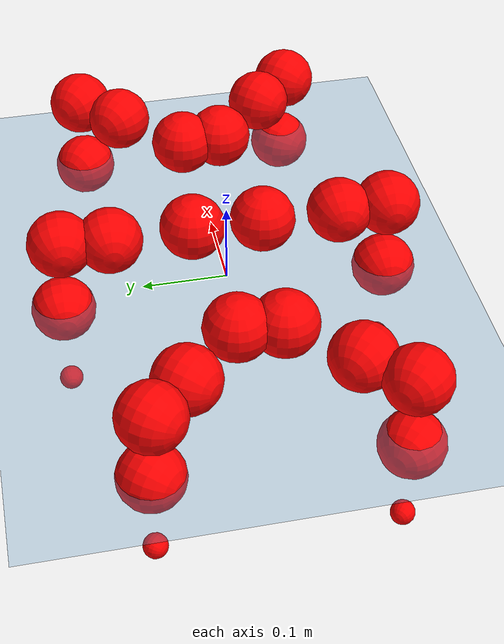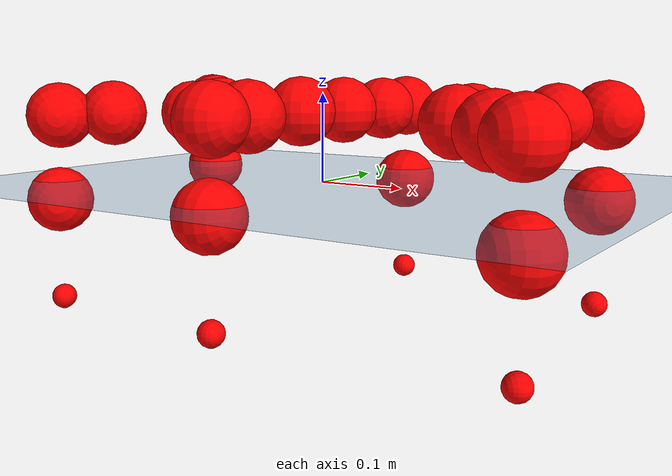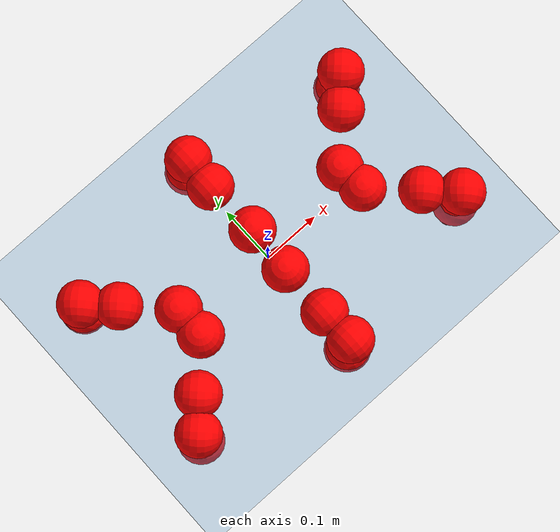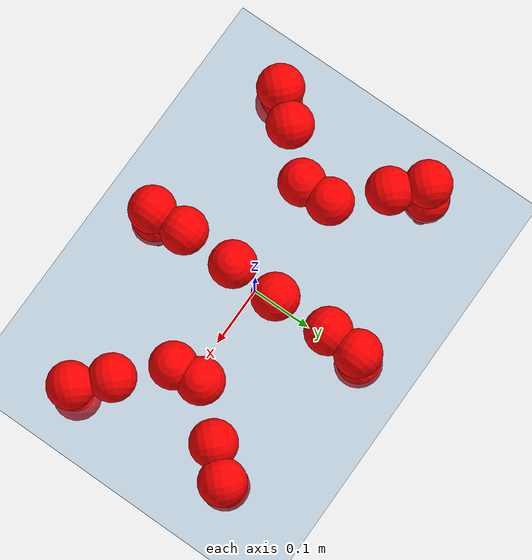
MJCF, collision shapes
<mujoco model="Golem">
  <compiler angle="radian" assetdir="assets" balanceinertia="true" inertiafromgeom="false"/>

  <option timestep="0.005" density="1.2" viscosity="2e-05"/>

  <size nkey="1"/>

  <visual>
    <quality shadowsize="8192"/>
    <map shadowclip="0.5"/>
  </visual>

  <default>
    <default class="/">
      <joint armature="0.01" damping="0.01" frictionloss="0.01"/>
      <geom contype="0" conaffinity="0" group="1" solref="-1000 -80"/>
      <site size="0.01 0.005 0.005" group="5"/>
      <general forcelimited="true" biastype="affine" gainprm="25" biasprm="0 -25 -0.5"/>
      <default class="visual">
        <geom type="mesh" group="2"/>
      </default>
      <default class="collision">
        <geom group="3"/>
      </default>
      <default class="foot">
        <geom size="0.01 0 0" condim="6" group="4" priority="1" solimp="0.015 1 0.01"/>
      </default>
      <default class="reward_collision_sphere">
        <geom group="5" rgba="1 0 0 1"/>
      </default>
    </default>
  </default>

  <asset>
    <texture type="skybox" colorspace="auto" name="//unnamed_texture_0" builtin="gradient" rgb1="0.95 0.95 0.95" rgb2="0.95 0.95 0.95" width="100" height="600"/>
    <texture type="2d" colorspace="auto" name="texplane" builtin="checker" rgb1="0.345 0.575 0.748" rgb2="0.345 0.575 0.748" markrgb="1 1 1" width="512" height="512"/>
    <material name="MatPlane" class="/" texture="texplane" texuniform="true" texrepeat="2 2" specular="0.9"/>
    <mesh name="body" class="/" file="body.stl" scale="0.001 0.001 0.001"/>
    <mesh name="coxa" class="/" file="coxa.stl" scale="0.001 0.001 0.001"/>
    <mesh name="femur" class="/" file="femur.stl" scale="0.001 0.001 0.001"/>
    <mesh name="tibia" class="/" file="tibia.stl" scale="0.001 0.001 0.001"/>
    <mesh name="tarsus" class="/" file="tarsus.stl" scale="0.001 0.001 0.001"/>
  </asset>

  <worldbody>
    <geom name="floor" class="/" size="100 100 0.125" type="plane" group="0" material="MatPlane"/>
    <light name="toplight_shadow" class="/" pos="0 0 5" dir="0.0990148 0.0990148 -0.990148" type="directional" ambient="0.04 0.04 0.04" diffuse="0.55 0.55 0.55" specular="0.12 0.12 0.12"/>
    <light name="toplight_fill" class="/" pos="0 0 5" dir="0.0990148 0.0990148 -0.990148" type="directional" castshadow="false" ambient="0.04 0.04 0.04" diffuse="0.3 0.3 0.3" specular="0.08 0.08 0.08"/>
    <body name="trunk" pos="0.00203988 -0.00274792 0.000562817" quat="1 9.30446e-06 2.91435e-05 -2.02134e-05">
      <inertial pos="-0.00126503 -0.00155573 0.00353265" quat="0.999971 0.00440707 -0.00247937 0.00565167" mass="3.02306" diaginertia="0.0144311 0.000518935 0.0260462"/>
      <joint name="//unnamed_joint_0" type="free"/>
      <geom name="//unnamed_geom_1" class="/" pos="0 0 0.077086" quat="1 0 0 0" type="mesh" rgba="0.9 0.9 0.9 1" mesh="body"/>
      <site name="imu" class="/" pos="0.130695 -0.000515913 0.110817" size="0.00947423"/>
      <camera name="track" class="/" pos="0 -1.11087 0" quat="0.707107 0.707107 0 0" mode="trackcom"/>
      <camera name="ego_camera" class="/" pos="0.140707 0 0.120447" quat="-0.5 -0.5 0.5 0.5"/>
      <body name="coxa_RR" pos="-0.191918 -0.0503606 0.074459" quat="0.383417 -1.37859e-05 -0.00079993 -0.923575">
        <inertial pos="0.000380494 0.00399422 -0.00341318" quat="0.999984 -0.00350671 0.00272618 -0.00358429" mass="0.167541" diaginertia="0.0149921 0.000516314 0.0252662"/>
        <joint name="coxa_joint_RR" class="/" pos="0 0 0" axis="-0.00451341 -0.00297708 -0.999985" range="-3.15733 3.13566" armature="0.00930159" damping="0.0229907" frictionloss="0.00837888"/>
        <geom name="//unnamed_geom_2" class="/" type="mesh" rgba="0.2 0.2 0.2 1" mesh="coxa"/>
        <geom name="//unnamed_geom_3" class="reward_collision_sphere" size="0.0378969" pos="-0.0324709 0 0"/>
        <body name="femur_RR" pos="0.0601863 0.00221845 0.000606031" quat="0.499458 -0.500894 0.500337 0.499309">
          <inertial pos="0.000926092 0.0010026 -0.00228575" quat="1 -0.000822224 0.000342721 -0.000371875" mass="0.167625" diaginertia="0.0146152 0.000516049 0.024824"/>
          <joint name="femur_joint_RR" class="/" pos="0 0 0" axis="-0.00301958 -0.00447815 -0.999985" range="-3.13954 3.15383" armature="0.00969162" damping="0.0148844" frictionloss="0.00933185"/>
          <geom name="//unnamed_geom_4" class="/" type="mesh" rgba="0.9 0.9 0.9 1" mesh="femur"/>
          <geom name="//unnamed_geom_5" class="reward_collision_sphere" size="0.0378969"/>
          <body name="tibia_RR" pos="0.00203745 -0.0612859 0.0040341" quat="7.52758e-06 1 -0.000164913 9.16573e-05">
            <inertial pos="0.00107145 0.00019156 0.00234636" quat="0.99999 0.00451708 -0.00045728 0.000565651" mass="0.174653" diaginertia="0.0150699 0.000528073 0.0242907"/>
            <joint name="tibia_joint_RR" class="/" pos="0 0 0" axis="-0.00134414 -0.00157243 0.999998" range="-3.1681 3.23988" armature="0.00816484" damping="0.00846138" frictionloss="0.010599"/>
            <geom name="//unnamed_geom_6" class="/" type="mesh" rgba="0.2 0.2 0.2 1" mesh="tibia"/>
            <geom name="//unnamed_geom_7" class="reward_collision_sphere" size="0.0378969"/>
            <body name="tarsus_RR" pos="0.098115 0.00255822 -0.000896943" quat="1 0.000509231 -0.000210016 0.000663392">
              <inertial pos="0.0645499 -0.00485248 0.00173249" quat="0.500449 0.505396 0.495937 0.498169" mass="0.158686" diaginertia="0.0141861 0.000498049 0.0243097"/>
              <joint name="tarsus_joint_RR" class="/" pos="0 0 0" axis="-0.00287286 5.75648e-05 0.999996" range="-3.21411 3.123" armature="0.0104954" damping="0.0460729" frictionloss="0.0100206"/>
              <geom name="//unnamed_geom_8" class="/" type="mesh" rgba="0.9 0.9 0.9 1" mesh="tarsus"/>
              <geom name="foot_1" class="foot" size="0.00996697" pos="0.121225 0 0" quat="0 -0.707107 0 0.707107"/>
              <geom name="//unnamed_geom_10" class="reward_collision_sphere" size="0.0378969"/>
              <geom name="//unnamed_geom_11" class="reward_collision_sphere" size="0.0142113" pos="0.116354 0 0"/>
              <site name="foot_1" class="foot" pos="0.121225 0 0" quat="0 -0.707107 0 0.707107" size="0.00947423"/>
            </body>
          </body>
        </body>
      </body>
      <body name="coxa_RM" pos="-0.00294565 -0.0716455 0.0810087" quat="0.7073 0.000404968 -0.000411414 -0.706913">
        <inertial pos="-0.00142508 0.00157049 0.00279159" quat="0.999998 0.00115347 0.000105322 0.00146609" mass="0.175423" diaginertia="0.0153343 0.000541467 0.0262084"/>
        <joint name="coxa_joint_RM" class="/" pos="0 0 0" axis="0.00624333 -0.00278452 -0.999977" stiffness="0.0178944" range="-3.1885 3.08737" armature="0.00976545" damping="0.0359073" frictionloss="0.0116644"/>
        <geom name="//unnamed_geom_12" class="/" type="mesh" rgba="0.2 0.2 0.2 1" mesh="coxa"/>
        <geom name="//unnamed_geom_13" class="reward_collision_sphere" size="0.0378969" pos="-0.0324709 0 0"/>
        <body name="femur_RM" pos="0.0582377 -7.49832e-05 -0.00147775" quat="0.500723 -0.500454 0.499536 0.499287">
          <inertial pos="0.000988231 -0.00115295 -0.00099853" quat="0.999917 -0.00799182 -0.00211675 -0.00991617" mass="0.162973" diaginertia="0.0150208 0.000501237 0.0250225"/>
          <joint name="femur_joint_RM" class="/" pos="0 0 0" axis="0.00619952 -0.0123708 -0.999904" range="-3.08844 3.11608" armature="0.00847374" damping="0.0128997" frictionloss="0.00920918"/>
          <geom name="//unnamed_geom_14" class="/" type="mesh" rgba="0.9 0.9 0.9 1" mesh="femur"/>
          <geom name="//unnamed_geom_15" class="reward_collision_sphere" size="0.0378969"/>
          <body name="tibia_RM" pos="-0.000158929 -0.0585341 0.00138009" quat="-0.000172517 1 -0.000104595 -1.80812e-05">
            <inertial pos="0.00396707 0.00274971 0.0024289" quat="0.999789 0.0157795 0.00169755 -0.0130566" mass="0.170629" diaginertia="0.0149009 0.000533491 0.0267993"/>
            <joint name="tibia_joint_RM" class="/" pos="0 0 0" axis="-0.00351728 0.000815831 0.999993" range="-3.12149 3.16765" armature="0.0100746" damping="0" frictionloss="0.00979889"/>
            <geom name="//unnamed_geom_16" class="/" type="mesh" rgba="0.2 0.2 0.2 1" mesh="tibia"/>
            <geom name="//unnamed_geom_17" class="reward_collision_sphere" size="0.0378969"/>
            <body name="tarsus_RM" pos="0.0936568 0.000728107 0.00295806" quat="0.999999 -0.000337848 -0.00112971 0.000393528">
              <inertial pos="0.0640417 0.00303005 -0.00201433" quat="0.497658 0.500548 0.506952 0.494761" mass="0.170635" diaginertia="0.0152212 0.000512506 0.0255052"/>
              <joint name="tarsus_joint_RM" class="/" pos="0 0 0" axis="-0.00749453 0.00799333 0.99994" range="-3.13452 3.13194" armature="0.0109407" damping="0" frictionloss="0.0104209"/>
              <geom name="//unnamed_geom_18" class="/" type="mesh" rgba="0.9 0.9 0.9 1" mesh="tarsus"/>
              <geom name="foot_2" class="foot" size="0.0099162" pos="0.121225 0 0" quat="0 -0.707107 0 0.707107"/>
              <geom name="//unnamed_geom_20" class="reward_collision_sphere" size="0.0378969"/>
              <geom name="//unnamed_geom_21" class="reward_collision_sphere" size="0.0142113" pos="0.116354 0 0"/>
              <site name="foot_2" class="foot" pos="0.121225 0 0" quat="0 -0.707107 0 0.707107" size="0.00947423"/>
            </body>
          </body>
        </body>
      </body>
      <body name="coxa_RF" pos="0.197084 -0.0459621 0.0744922" quat="0.923841 -0.000166431 0.000176773 -0.382776">
        <inertial pos="-0.00193128 -0.000283208 0.000768987" quat="0.99994 0.00443111 -0.00693159 -0.00728907" mass="0.16929" diaginertia="0.0140437 0.000539945 0.025866"/>
        <joint name="coxa_joint_RF" class="/" pos="0 0 0" axis="-0.00402356 0.00311833 -0.999987" range="-3.1468 3.09631" armature="0.00877057" damping="0.0290828" frictionloss="0.00867868"/>
        <geom name="//unnamed_geom_22" class="/" type="mesh" rgba="0.2 0.2 0.2 1" mesh="coxa"/>
        <geom name="//unnamed_geom_23" class="reward_collision_sphere" size="0.0378969" pos="-0.0324709 0 0"/>
        <body name="femur_RF" pos="0.0610543 0.00252223 -0.00170263" quat="0.500112 -0.500441 0.499033 0.500412">
          <inertial pos="-0.00174097 -0.00297101 0.00121371" quat="0.999922 -0.00722419 0.00978559 -0.00295735" mass="0.166213" diaginertia="0.0141415 0.000484687 0.0254574"/>
          <joint name="femur_joint_RF" class="/" pos="0 0 0" axis="-0.00126163 0.00193877 -0.999997" range="-3.18261 3.15446" armature="0.00928852" damping="0.0109592" frictionloss="0.0104996"/>
          <geom name="//unnamed_geom_24" class="/" type="mesh" rgba="0.9 0.9 0.9 1" mesh="femur"/>
          <geom name="//unnamed_geom_25" class="reward_collision_sphere" size="0.0378969"/>
          <body name="tibia_RF" pos="0.000835718 -0.0634586 0.000721439" quat="-1.87445e-05 1 6.14962e-05 -0.000194839">
            <inertial pos="0.00206036 0.000215504 0.000354616" quat="0.999922 -0.00289041 -0.00756557 -0.00946701" mass="0.166769" diaginertia="0.0138283 0.000518672 0.0246965"/>
            <joint name="tibia_joint_RF" class="/" pos="0 0 0" axis="0.00541084 0.00418908 0.999977" range="-3.10162 3.08588" armature="0.0102369" damping="0.000550542" frictionloss="0.0101422"/>
            <geom name="//unnamed_geom_26" class="/" type="mesh" rgba="0.2 0.2 0.2 1" mesh="tibia"/>
            <geom name="//unnamed_geom_27" class="reward_collision_sphere" size="0.0378969"/>
            <body name="tarsus_RF" pos="0.0991351 -0.00290658 -0.00239764" quat="0.999999 0.00150505 0.000552203 -0.000616015">
              <inertial pos="0.0688374 0.00373516 -0.00248751" quat="0.486261 0.509128 0.513478 0.490591" mass="0.170474" diaginertia="0.0140949 0.000550178 0.0248678"/>
              <joint name="tarsus_joint_RF" class="/" pos="0 0 0" axis="-0.00588643 0.0026018 0.999979" stiffness="0.0213371" range="-3.20889 3.10036" armature="0.00712197" damping="0.0126186" frictionloss="0.00934722"/>
              <geom name="//unnamed_geom_28" class="/" type="mesh" rgba="0.9 0.9 0.9 1" mesh="tarsus"/>
              <geom name="foot_3" class="foot" size="0.0085587" pos="0.121225 0 0" quat="0 -0.707107 0 0.707107"/>
              <geom name="//unnamed_geom_30" class="reward_collision_sphere" size="0.0378969"/>
              <geom name="//unnamed_geom_31" class="reward_collision_sphere" size="0.0142113" pos="0.116354 0 0"/>
              <site name="foot_3" class="foot" pos="0.121225 0 0" quat="0 -0.707107 0 0.707107" size="0.00947423"/>
            </body>
          </body>
        </body>
      </body>
      <body name="coxa_LR" pos="-0.19145 0.0475143 0.0780304" quat="0.382979 0.000550756 -0.000548032 0.923757">
        <inertial pos="-0.00237476 0.00403217 0.00361065" quat="0.999978 0.00588378 0.00195225 0.00231971" mass="0.177658" diaginertia="0.0160422 0.000531454 0.0266517"/>
        <joint name="coxa_joint_LR" class="/" pos="0 0 0" axis="0.00677149 -0.00303672 -0.999972" stiffness="0.00164283" range="-3.16946 3.06682" armature="0.0108743" damping="0.0134514" frictionloss="0.00835617"/>
        <geom name="//unnamed_geom_32" class="/" type="mesh" rgba="0.2 0.2 0.2 1" mesh="coxa"/>
        <geom name="//unnamed_geom_33" class="reward_collision_sphere" size="0.0378969" pos="-0.0324709 0 0"/>
        <body name="femur_LR" pos="0.0600043 0.000490843 0.00209442" quat="0.499851 -0.499998 0.500017 0.500133">
          <inertial pos="0.00248429 -0.0010918 0.00270603" quat="0.999846 0.00635834 -0.00815224 -0.0142058" mass="0.163723" diaginertia="0.0146144 0.000512791 0.0231041"/>
          <joint name="femur_joint_LR" class="/" pos="0 0 0" axis="-0.00691914 0.00027504 0.999976" stiffness="0.00839027" range="-3.2304 3.16551" armature="0.00976056" damping="0.015692" frictionloss="0.00851292"/>
          <geom name="//unnamed_geom_34" class="/" type="mesh" rgba="0.9 0.9 0.9 1" mesh="femur"/>
          <geom name="//unnamed_geom_35" class="reward_collision_sphere" size="0.0378969"/>
          <body name="tibia_LR" pos="-0.000160517 -0.0601707 6.83226e-05" quat="0.000257518 1 -0.000331827 0.000375029">
            <inertial pos="-0.00182374 0.0038732 -0.000401387" quat="0.999995 -0.00205095 0.00015112 0.00221388" mass="0.169716" diaginertia="0.0148668 0.000539997 0.0251797"/>
            <joint name="tibia_joint_LR" class="/" pos="0 0 0" axis="0.000423535 -0.00512188 -0.999987" range="-3.11206 3.15426" armature="0.00918096" damping="0.0409828" frictionloss="0.00964572"/>
            <geom name="//unnamed_geom_36" class="/" type="mesh" rgba="0.2 0.2 0.2 1" mesh="tibia"/>
            <geom name="//unnamed_geom_37" class="reward_collision_sphere" size="0.0378969"/>
            <body name="tarsus_LR" pos="0.0897183 0.00231545 0.00266845" quat="0.999999 -0.000197649 0.000944499 0.00043131">
              <inertial pos="0.0613724 -0.000980721 -0.000293525" quat="0.500269 0.499937 0.499508 0.500286" mass="0.166955" diaginertia="0.0155294 0.000533588 0.0265165"/>
              <joint name="tarsus_joint_LR" class="/" pos="0 0 0" axis="0.00308293 0.0109739 -0.999935" stiffness="0.0139518" range="-3.09323 3.13117" armature="0.00933792" damping="0.0318496" frictionloss="0.0107375"/>
              <geom name="//unnamed_geom_38" class="/" type="mesh" rgba="0.9 0.9 0.9 1" mesh="tarsus"/>
              <geom name="foot_4" class="foot" size="0.00943417" pos="0.121225 0 0" quat="0.707107 0 -0.707107 0"/>
              <geom name="//unnamed_geom_40" class="reward_collision_sphere" size="0.0378969"/>
              <geom name="//unnamed_geom_41" class="reward_collision_sphere" size="0.0142113" pos="0.116354 0 0"/>
              <site name="foot_4" class="foot" pos="0.121225 0 0" quat="0.707107 0 -0.707107 0" size="0.00947423"/>
            </body>
          </body>
        </body>
      </body>
      <body name="coxa_LM" pos="0.000417135 0.0744391 0.0794066" quat="0.7068 -5.81218e-05 -5.00101e-05 0.707414">
        <inertial pos="0.00223213 -0.00253814 0.00100346" quat="0.999991 0.000632023 0.00020438 -0.00412669" mass="0.178176" diaginertia="0.0155462 0.000565544 0.0249601"/>
        <joint name="coxa_joint_LM" class="/" pos="0 0 0" axis="0.00904949 0.00174403 -0.999958" range="-3.13521 3.15254" armature="0.00792187" damping="0.0270816" frictionloss="0.00940538"/>
        <geom name="//unnamed_geom_42" class="/" type="mesh" rgba="0.2 0.2 0.2 1" mesh="coxa"/>
        <geom name="//unnamed_geom_43" class="reward_collision_sphere" size="0.0378969" pos="-0.0324709 0 0"/>
        <body name="femur_LM" pos="0.0629173 0.00315704 -0.00162584" quat="0.500139 -0.500389 0.499133 0.500337">
          <inertial pos="-0.00110295 0.00111153 -0.00277207" quat="0.999999 0.000988572 0.00123158 0.000279472" mass="0.170077" diaginertia="0.0151422 0.000533349 0.0247031"/>
          <joint name="femur_joint_LM" class="/" pos="0 0 0" axis="-0.00968759 -0.00478053 0.999942" range="-3.09591 3.16055" armature="0.0103348" damping="0.0112522" frictionloss="0.00942633"/>
          <geom name="//unnamed_geom_44" class="/" type="mesh" rgba="0.9 0.9 0.9 1" mesh="femur"/>
          <geom name="//unnamed_geom_45" class="reward_collision_sphere" size="0.0378969"/>
          <body name="tibia_LM" pos="-0.00128966 -0.0559596 -0.00271523" quat="-0.00024686 1 0.000511961 -0.000377465">
            <inertial pos="-0.000466144 0.00339179 -0.00453263" quat="0.999726 -0.0204003 0.011184 -0.00269135" mass="0.176566" diaginertia="0.0145646 0.000543804 0.0258011"/>
            <joint name="tibia_joint_LM" class="/" pos="0 0 0" axis="0.00226891 -0.00443 -0.999988" stiffness="0.0198702" range="-3.13981 3.19297" armature="0.0105625" damping="0.0148446" frictionloss="0.00988077"/>
            <geom name="//unnamed_geom_46" class="/" type="mesh" rgba="0.2 0.2 0.2 1" mesh="tibia"/>
            <geom name="//unnamed_geom_47" class="reward_collision_sphere" size="0.0378969"/>
            <body name="tarsus_LM" pos="0.0959217 0.00392905 -0.00267152" quat="0.999999 -0.000163934 7.16433e-05 0.0010675">
              <inertial pos="0.0631171 -0.00116483 0.00187462" quat="0.511844 0.493273 0.50604 0.488489" mass="0.162814" diaginertia="0.0141103 0.000526855 0.0248985"/>
              <joint name="tarsus_joint_LM" class="/" pos="0 0 0" axis="0.00899651 0.00669497 -0.999937" stiffness="0.0230176" range="-3.15526 3.18834" armature="0.0085771" damping="0.0232523" frictionloss="0.00933877"/>
              <geom name="//unnamed_geom_48" class="/" type="mesh" rgba="0.9 0.9 0.9 1" mesh="tarsus"/>
              <geom name="foot_5" class="foot" size="0.00955246" pos="0.121225 0 0" quat="0.707107 0 -0.707107 0"/>
              <geom name="//unnamed_geom_50" class="reward_collision_sphere" size="0.0378969"/>
              <geom name="//unnamed_geom_51" class="reward_collision_sphere" size="0.0142113" pos="0.116354 0 0"/>
              <site name="foot_5" class="foot" pos="0.121225 0 0" quat="0.707107 0 -0.707107 0" size="0.00947423"/>
            </body>
          </body>
        </body>
      </body>
      <body name="coxa_LF" pos="0.192378 0.0471383 0.0743513" quat="0.923367 1.07151e-05 0.000695989 0.383919">
        <inertial pos="0.00281706 -0.00254205 0.00172197" quat="0.99973 -0.00360089 -0.00793461 0.0215177" mass="0.167057" diaginertia="0.0150046 0.000522659 0.0274862"/>
        <joint name="coxa_joint_LF" class="/" pos="0 0 0" axis="-0.00871979 0.0145846 -0.999856" stiffness="0.0278927" range="-3.13522 3.14515" armature="0.0100464" damping="0.0118811" frictionloss="0.0106497"/>
        <geom name="//unnamed_geom_52" class="/" type="mesh" rgba="0.2 0.2 0.2 1" mesh="coxa"/>
        <geom name="//unnamed_geom_53" class="reward_collision_sphere" size="0.0378969" pos="-0.0324709 0 0"/>
        <body name="femur_LF" pos="0.0636507 0.00316355 0.000107469" quat="0.499751 -0.500248 0.499654 0.500347">
          <inertial pos="-0.00234563 -0.00275882 -0.00358267" quat="0.999936 -0.0112817 0.00110865 -0.000119834" mass="0.16955" diaginertia="0.0152282 0.000530589 0.0268862"/>
          <joint name="femur_joint_LF" class="/" pos="0 0 0" axis="0.000446883 0.0012748 0.999999" range="-3.12269 3.04259" armature="0.009306" damping="0.0244152" frictionloss="0.00984431"/>
          <geom name="//unnamed_geom_54" class="/" type="mesh" rgba="0.9 0.9 0.9 1" mesh="femur"/>
          <geom name="//unnamed_geom_55" class="reward_collision_sphere" size="0.0378969"/>
          <body name="tibia_LF" pos="-0.00301173 -0.0599075 0.00300002" quat="-5.5188e-06 1 2.29837e-06 1.17622e-05">
            <inertial pos="-0.00181567 0.00306116 0.000262939" quat="0.999999 -0.000929773 0.000892425 0.000424532" mass="0.171066" diaginertia="0.0148017 0.00053322 0.0253332"/>
            <joint name="tibia_joint_LF" class="/" pos="0 0 0" axis="-0.00476258 0.0058569 -0.999972" stiffness="0.0011546" range="-3.18041 3.13368" armature="0.0110007" damping="0" frictionloss="0.0106279"/>
            <geom name="//unnamed_geom_56" class="/" type="mesh" rgba="0.2 0.2 0.2 1" mesh="tibia"/>
            <geom name="//unnamed_geom_57" class="reward_collision_sphere" size="0.0378969"/>
            <body name="tarsus_LF" pos="0.0937812 -0.00280126 -0.00388768" quat="0.999999 0.000412154 0.000650855 -0.000817363">
              <inertial pos="0.0664334 0.00285867 -0.000656693" quat="0.50061 0.501349 0.496715 0.501311" mass="0.167819" diaginertia="0.0141605 0.000507184 0.0245674"/>
              <joint name="tarsus_joint_LF" class="/" pos="0 0 0" axis="-0.009471 0.00188332 -0.999953" stiffness="0.0274926" range="-3.07852 3.06968" armature="0.00958076" damping="0.0131762" frictionloss="0.00898364"/>
              <geom name="//unnamed_geom_58" class="/" type="mesh" rgba="0.9 0.9 0.9 1" mesh="tarsus"/>
              <geom name="foot_6" class="foot" size="0.0086224" pos="0.121225 0 0" quat="0.707107 0 -0.707107 0"/>
              <geom name="//unnamed_geom_60" class="reward_collision_sphere" size="0.0378969"/>
              <geom name="//unnamed_geom_61" class="reward_collision_sphere" size="0.0142113" pos="0.116354 0 0"/>
              <site name="foot_6" class="foot" pos="0.121225 0 0" quat="0.707107 0 -0.707107 0" size="0.00947423"/>
            </body>
          </body>
        </body>
      </body>
    </body>
  </worldbody>

  <contact>
    <pair class="/" geom1="floor" geom2="foot_1" name="//unnamed_contact_0"/>
    <pair class="/" geom1="floor" geom2="foot_2" name="//unnamed_contact_1"/>
    <pair class="/" geom1="floor" geom2="foot_3" name="//unnamed_contact_2"/>
    <pair class="/" geom1="floor" geom2="foot_4" name="//unnamed_contact_3"/>
    <pair class="/" geom1="floor" geom2="foot_5" name="//unnamed_contact_4"/>
    <pair class="/" geom1="floor" geom2="foot_6" name="//unnamed_contact_5"/>
  </contact>

  <actuator>
    <general name="coxa_joint_RR" class="/" joint="coxa_joint_RR" forcerange="-7.40027 7.40027" gainprm="22.0419" biasprm="0 -22.0419 -0.459319"/>
    <general name="femur_joint_RR" class="/" joint="femur_joint_RR" forcerange="-6.59235 6.59235" gainprm="22.0419" biasprm="0 -22.0419 -0.459319"/>
    <general name="tibia_joint_RR" class="/" joint="tibia_joint_RR" forcerange="-7.91739 7.91739" gainprm="22.0419" biasprm="0 -22.0419 -0.459319"/>
    <general name="tarsus_joint_RR" class="/" joint="tarsus_joint_RR" forcerange="-6.87029 6.87029" gainprm="22.0419" biasprm="0 -22.0419 -0.459319"/>
    <general name="coxa_joint_RM" class="/" joint="coxa_joint_RM" forcerange="-6.9851 6.9851" gainprm="22.0419" biasprm="0 -22.0419 -0.459319"/>
    <general name="femur_joint_RM" class="/" joint="femur_joint_RM" forcerange="-7.12025 7.12025" gainprm="22.0419" biasprm="0 -22.0419 -0.459319"/>
    <general name="tibia_joint_RM" class="/" joint="tibia_joint_RM" forcerange="-8.12731 8.12731" gainprm="22.0419" biasprm="0 -22.0419 -0.459319"/>
    <general name="tarsus_joint_RM" class="/" joint="tarsus_joint_RM" forcerange="-6.27567 6.27567" gainprm="22.0419" biasprm="0 -22.0419 -0.459319"/>
    <general name="coxa_joint_RF" class="/" joint="coxa_joint_RF" forcerange="-6.66914 6.66914" gainprm="22.0419" biasprm="0 -22.0419 -0.459319"/>
    <general name="femur_joint_RF" class="/" joint="femur_joint_RF" forcerange="-5.70277 5.70277" gainprm="22.0419" biasprm="0 -22.0419 -0.459319"/>
    <general name="tibia_joint_RF" class="/" joint="tibia_joint_RF" forcerange="-7.24433 7.24433" gainprm="22.0419" biasprm="0 -22.0419 -0.459319"/>
    <general name="tarsus_joint_RF" class="/" joint="tarsus_joint_RF" forcerange="-5.72513 5.72513" gainprm="22.0419" biasprm="0 -22.0419 -0.459319"/>
    <general name="coxa_joint_LR" class="/" joint="coxa_joint_LR" forcerange="-7.3849 7.3849" gainprm="22.0419" biasprm="0 -22.0419 -0.459319"/>
    <general name="femur_joint_LR" class="/" joint="femur_joint_LR" forcerange="-7.4702 7.4702" gainprm="22.0419" biasprm="0 -22.0419 -0.459319"/>
    <general name="tibia_joint_LR" class="/" joint="tibia_joint_LR" forcerange="-7.08025 7.08025" gainprm="22.0419" biasprm="0 -22.0419 -0.459319"/>
    <general name="tarsus_joint_LR" class="/" joint="tarsus_joint_LR" forcerange="-7.11254 7.11254" gainprm="22.0419" biasprm="0 -22.0419 -0.459319"/>
    <general name="coxa_joint_LM" class="/" joint="coxa_joint_LM" forcerange="-7.29502 7.29502" gainprm="22.0419" biasprm="0 -22.0419 -0.459319"/>
    <general name="femur_joint_LM" class="/" joint="femur_joint_LM" forcerange="-6.92442 6.92442" gainprm="22.0419" biasprm="0 -22.0419 -0.459319"/>
    <general name="tibia_joint_LM" class="/" joint="tibia_joint_LM" forcerange="-7.76727 7.76727" gainprm="22.0419" biasprm="0 -22.0419 -0.459319"/>
    <general name="tarsus_joint_LM" class="/" joint="tarsus_joint_LM" forcerange="-7.02073 7.02073" gainprm="22.0419" biasprm="0 -22.0419 -0.459319"/>
    <general name="coxa_joint_LF" class="/" joint="coxa_joint_LF" forcerange="-7.50334 7.50334" gainprm="22.0419" biasprm="0 -22.0419 -0.459319"/>
    <general name="femur_joint_LF" class="/" joint="femur_joint_LF" forcerange="-7.46394 7.46394" gainprm="22.0419" biasprm="0 -22.0419 -0.459319"/>
    <general name="tibia_joint_LF" class="/" joint="tibia_joint_LF" forcerange="-6.86262 6.86262" gainprm="22.0419" biasprm="0 -22.0419 -0.459319"/>
    <general name="tarsus_joint_LF" class="/" joint="tarsus_joint_LF" forcerange="-6.92441 6.92441" gainprm="22.0419" biasprm="0 -22.0419 -0.459319"/>
  </actuator>

  <sensor>
    <gyro site="imu" name="imu_angular_velocity"/>
    <velocimeter site="imu" name="imu_linear_velocity"/>
    <framelinvel objtype="site" objname="foot_1" name="foot_1_global_linear_velocity"/>
    <framelinvel objtype="site" objname="foot_2" name="foot_2_global_linear_velocity"/>
    <framelinvel objtype="site" objname="foot_3" name="foot_3_global_linear_velocity"/>
    <framelinvel objtype="site" objname="foot_4" name="foot_4_global_linear_velocity"/>
    <framelinvel objtype="site" objname="foot_5" name="foot_5_global_linear_velocity"/>
    <framelinvel objtype="site" objname="foot_6" name="foot_6_global_linear_velocity"/>
  </sensor>

  <keyframe>
    <key name="home" qpos="0 0 0.1457 1 0 0 0 0 0 0 0 0 0 0 0 0 0 0 0 0 0 0 0 0 0 0 0 0 0 0 0"/>
  </keyframe>
</mujoco>
